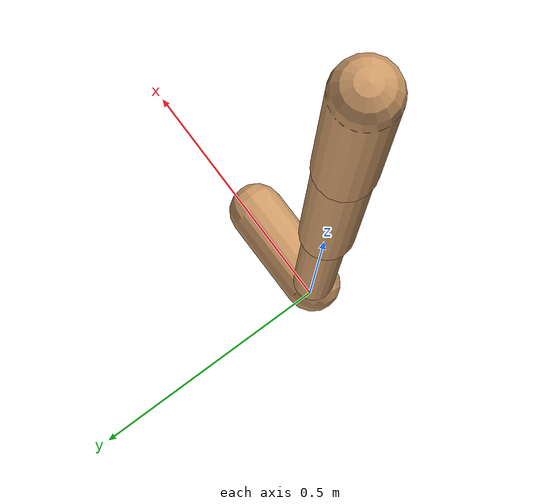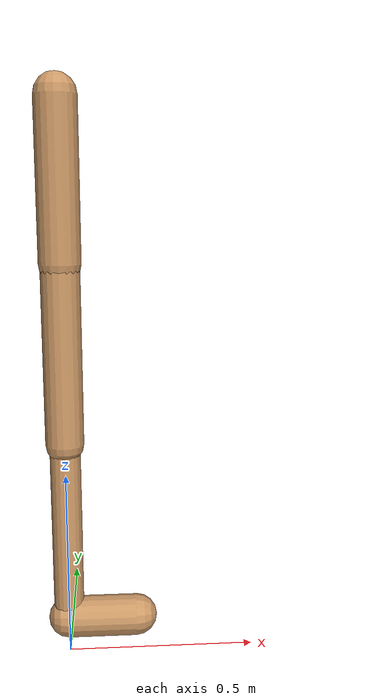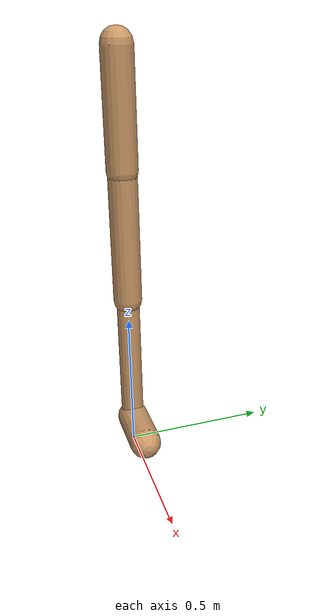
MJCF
<mujoco model="walker2d">
  <compiler angle="degree" coordinate="global" inertiafromgeom="true" />
  <default>
    <joint armature="0.01" damping=".1" limited="true" />
    <geom conaffinity="0" condim="3" contype="1" density="1000" friction="0.8 .1 .1" rgba="0.8 0.6 .4 1" />
  </default>
  <option integrator="RK4" timestep="0.002" />
  <worldbody>

    <body name="torso" pos="0 0 0.02663359681613226">
      <joint armature="0" axis="1 0 0" damping="0" limited="false" name="ignorex" pos="0 0 0" stiffness="0" type="slide" />
      <joint armature="0" axis="0 0 1" damping="0" limited="false" name="ignorez" pos="0 0 0" ref="1.25" stiffness="0" type="slide" />
      <joint armature="0" axis="0 1 0" damping="0" limited="false" name="ignorey" pos="0 0 0" stiffness="0" type="hinge" />
      <geom fromto="0 0 1.45 0 0 1.05" name="torso_geom" size="0.053285737505257204" type="capsule" />
      <body name="thigh">
        <joint axis="0 -1 0" name="thigh_joint" pos="0 0 1.05" range="-150 0" type="hinge" />
        <geom fromto="0.0 0.0 1.05 0.0 0.0 0.5873840857186742" name="thigh_geom" size="0.04968164531414685" type="capsule" />
        <body name="leg" pos="0.0 0.0 -0.012615914281325802">
          <joint axis="0 -1 0" name="leg_joint" pos="0 0 0.6" range="-150 0" type="hinge" />
          <geom fromto="0.0 0.0 0.6 0.0 0.0 0.08598231746519355" name="leg_geom" size="0.03974531625131748" type="capsule" />
          <body name="foot" pos="0.0 0.0 -0.014017682534806453">
            <joint axis="0 -1 0" name="foot_joint" pos="0 0 0.1" range="-45 45" type="hinge" />
            <geom fromto="0.0 0.0 0.1 0.18202690532528326 0.0 0.1" name="foot_geom" size="0.05493435302338271" type="capsule" />
          </body>
        </body>
      </body>

      <body name="thigh_left">
        <joint axis="0 -1 0" name="thigh_left_joint" pos="0 0 1.05" range="-150 0" type="hinge" />
        <geom fromto="0.0 0.0 1.05 0.0 0.0 0.5873840857186742" name="thigh_left_geom" rgba=".7 .3 .6 1" size="0.04968164531414685" type="capsule" />
        <body name="leg_left" pos="0.0 0.0 -0.012615914281325802">
          <joint axis="0 -1 0" name="leg_left_joint" pos="0 0 0.6" range="-150 0" type="hinge" />
          <geom fromto="0.0 0.0 0.6 0.0 0.0 0.08598231746519355" name="leg_left_geom" rgba=".7 .3 .6 1" size="0.03974531625131748" type="capsule" />
          <body name="foot_left" pos="0.0 0.0 -0.014017682534806453">
            <joint axis="0 -1 0" name="foot_left_joint" pos="0 0 0.1" range="-45 45" type="hinge" />
            <geom fromto="0.0 0.0 0.1 0.18202690532528326 0.0 0.1" name="foot_left_geom" rgba=".7 .3 .6 1" size="0.05493435302338271" type="capsule" />
          </body>
        </body>
      </body>
    </body>
  </worldbody>
  <actuator>

    <motor ctrllimited="true" ctrlrange="-1.0 1.0" gear="100" joint="thigh_joint" />
    <motor ctrllimited="true" ctrlrange="-1.0 1.0" gear="100" joint="leg_joint" />
    <motor ctrllimited="true" ctrlrange="-1.0 1.0" gear="100" joint="foot_joint" />
    <motor ctrllimited="true" ctrlrange="-1.0 1.0" gear="100" joint="thigh_left_joint" />
    <motor ctrllimited="true" ctrlrange="-1.0 1.0" gear="100" joint="leg_left_joint" />
    <motor ctrllimited="true" ctrlrange="-1.0 1.0" gear="100" joint="foot_left_joint" />

  </actuator>
</mujoco>
